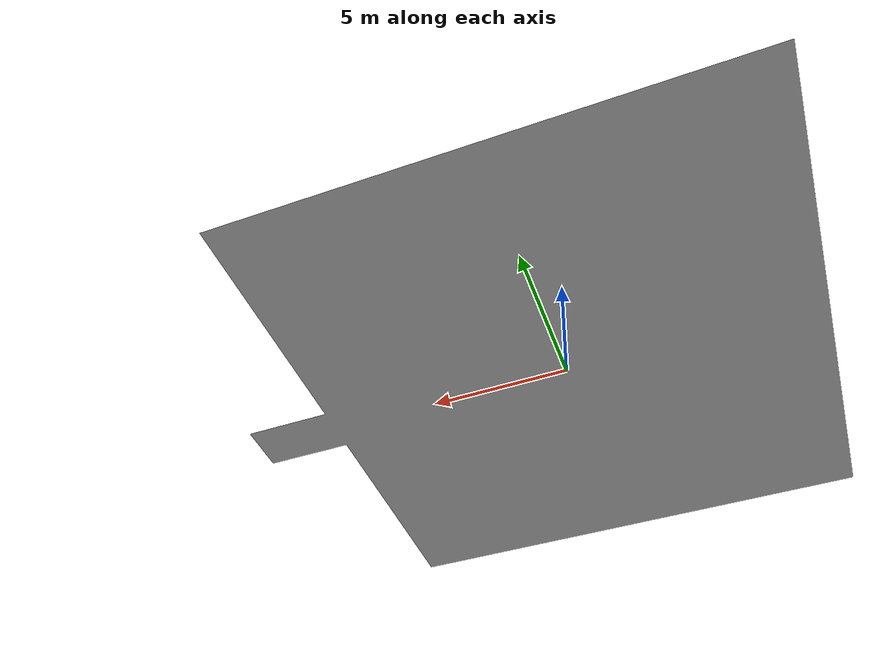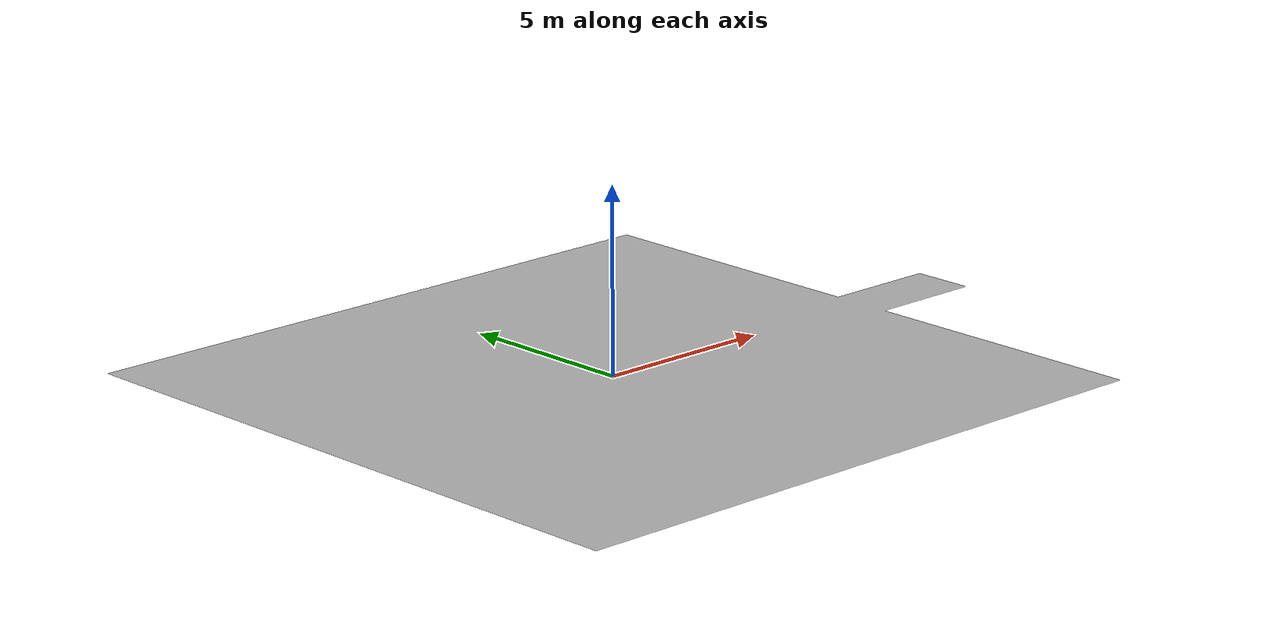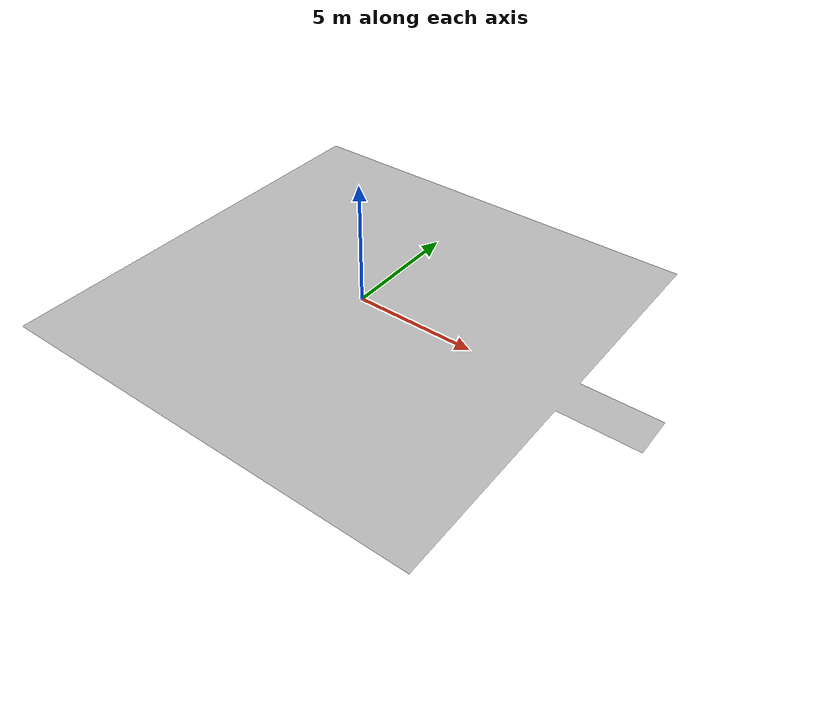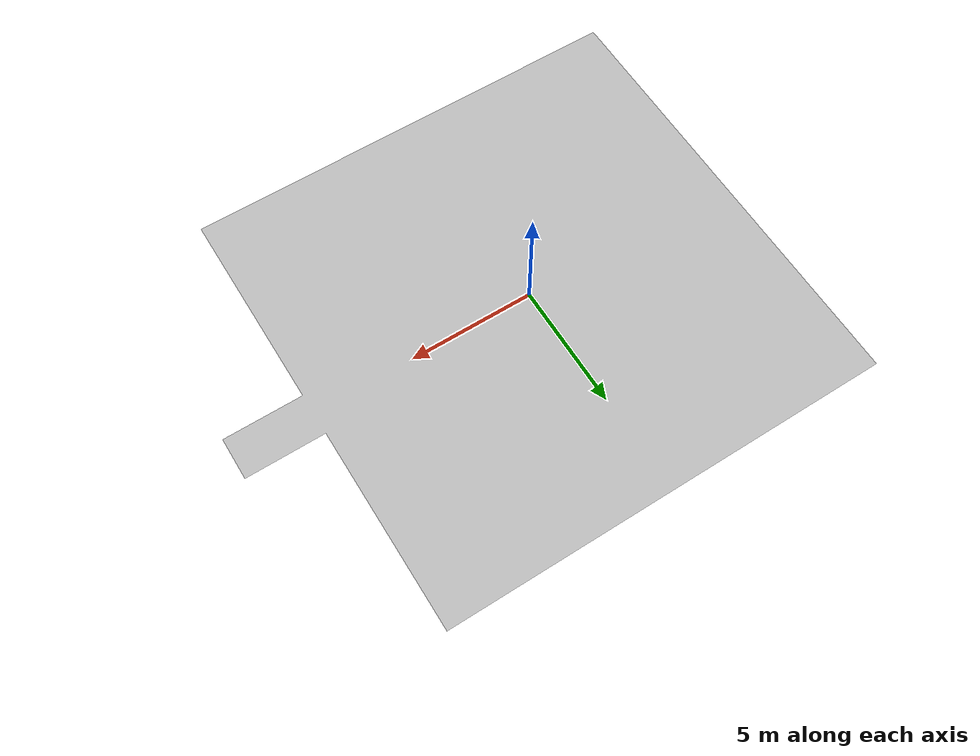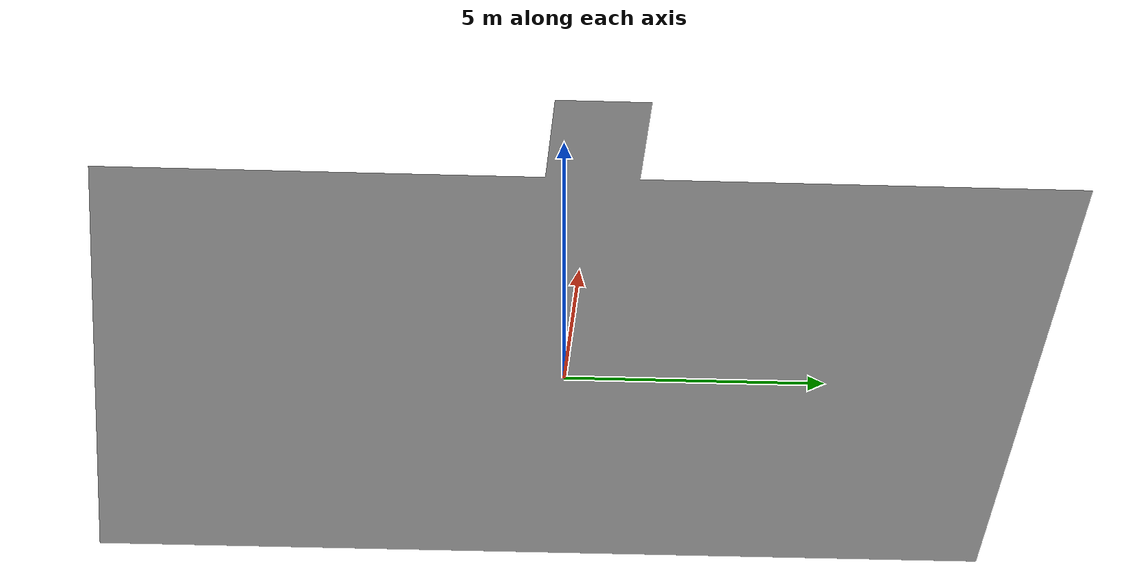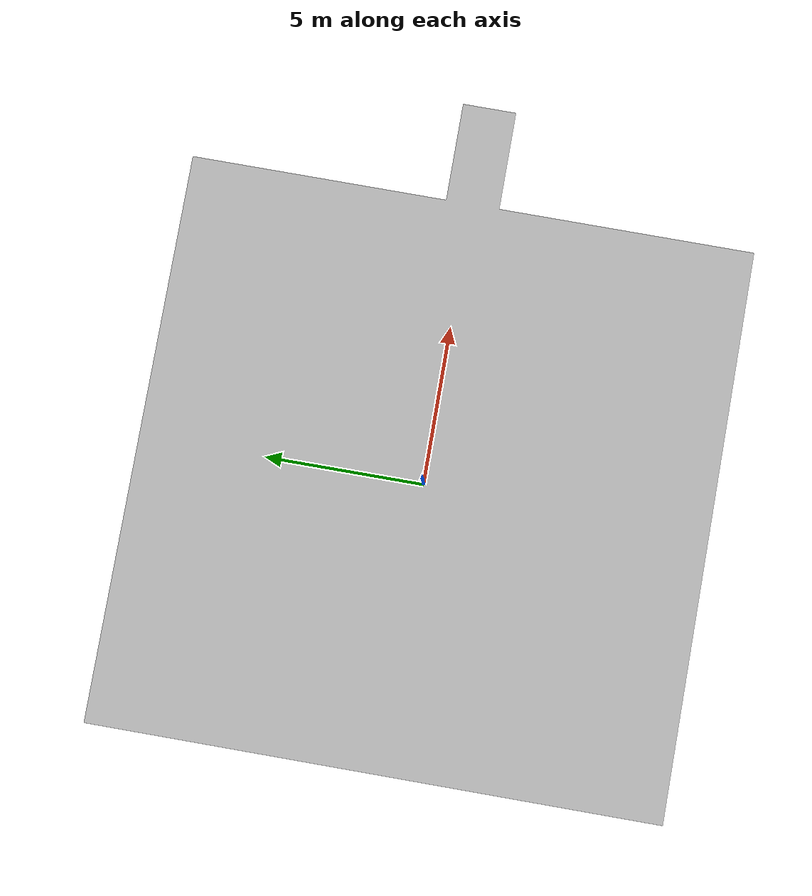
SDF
<?xml version="1.0" ?>
<sdf version='1.5'>
<model name='maze_roof_first'>
<static>true</static>
<link name="link">
   <pose frame=''>0 0 0 3.141592 0 0</pose>
   <collision name='collision'>
    <geometry>
      <mesh>
        <scale>1.0 1.0 1.0</scale>
        <uri>model://maze_roof_first/model.dae</uri>
      </mesh>
    </geometry>
  </collision>
  <visual name='visual'>
    <cast_shadows>false</cast_shadows>
    <geometry>
      <mesh>
        <scale>1.0 1.0 1.0</scale>
        <uri>model://maze_roof_first/model.dae</uri>
      </mesh>
    </geometry>
  </visual>
</link>
</model>
</sdf>
